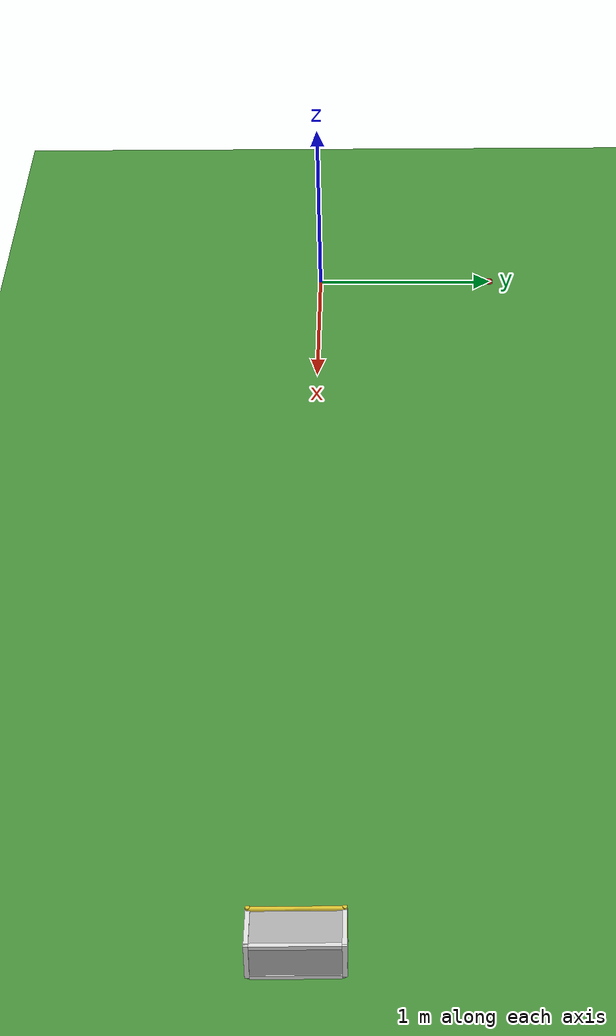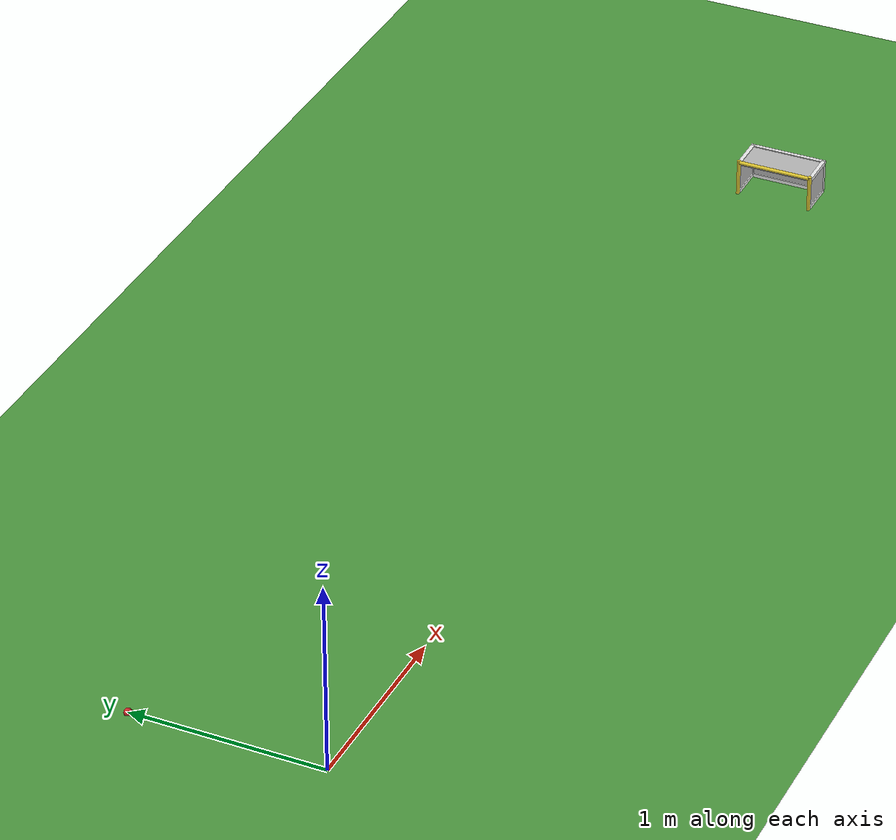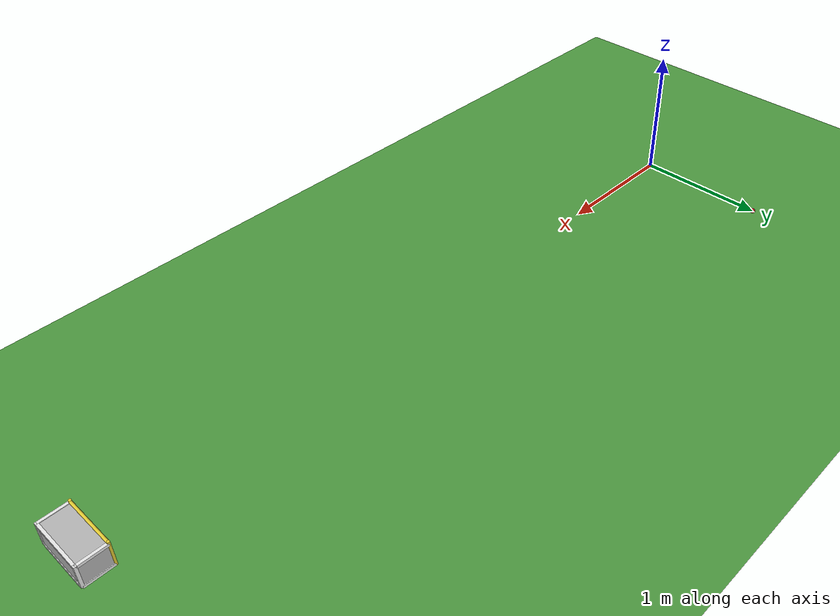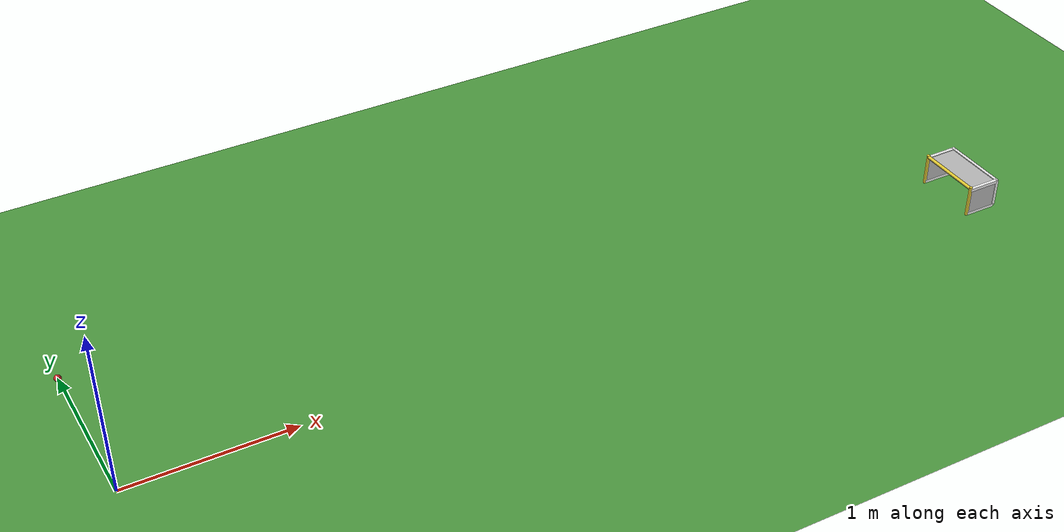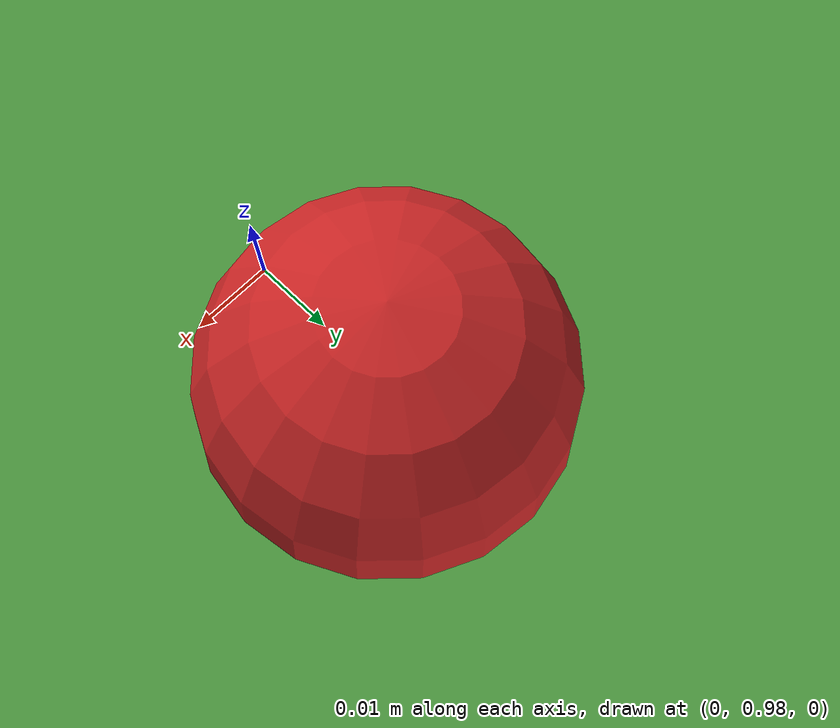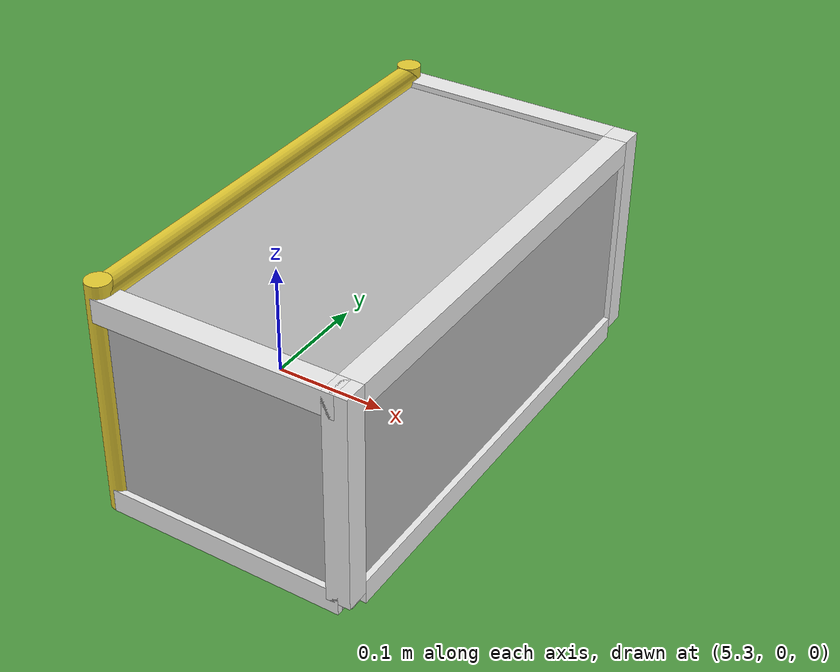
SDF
<sdf version="1.6">
 <world name="vsss_environment">
  <light name="sun" type="directional">
   <cast_shadows>0</cast_shadows>
   <pose>0 0 10 0 -0 0</pose>
   <diffuse>0.8 0.8 0.8 1</diffuse>
   <specular>0.2 0.2 0.2 1</specular>
   <attenuation>
    <range>1000</range>
    <constant>0.9</constant>
    <linear>0.01</linear>
    <quadratic>0.001</quadratic>
   </attenuation>
   <direction>-0.5 0.1 -0.9</direction>
  </light>
  <model name="ground_plane">
   <static>1</static>
   <link name="link">
    <collision name="collision">
     <geometry><plane><normal>0 0 1</normal><size>11 9</size></plane></geometry>
     <surface><friction><ode><mu>0.5</mu><mu2>0.5</mu2></ode></friction></surface>
    </collision>
    <visual name="visual">
     <cast_shadows>0</cast_shadows>
     <geometry><plane><normal>0 0 1</normal><size>11 9</size></plane></geometry>
     <material>
      <script>
       <uri>model://robocup_3Dsim_field/materials/scripts/</uri>
       <uri>model://robocup_3Dsim_field/materials/textures/</uri>
       <name>RoboCup/Grass</name>
      </script>
     </material>
    </visual>
   </link>
  </model>
  <gravity>0 0 -9.8</gravity>
  <magnetic_field>6e-06 2.3e-05 -4.2e-05</magnetic_field>
  <atmosphere type="adiabatic"/>
  <physics name="default_physics" default="0" type="ode">
   <max_step_size>0.001</max_step_size>
   <real_time_factor>1</real_time_factor>
   <real_time_update_rate>1000</real_time_update_rate>
  </physics>
  <scene><ambient>0.4 0.4 0.4 1</ambient><background>0.7 0.7 0.7 1</background><shadows>0</shadows></scene>
  <spherical_coordinates>
   <surface_model>EARTH_WGS84</surface_model>
   <latitude_deg>0</latitude_deg>
   <longitude_deg>0</longitude_deg>
   <elevation>0</elevation>
   <heading_deg>0</heading_deg>
  </spherical_coordinates>
  <model name="robocup_3d_goal">
   <static>1</static>
   <link name="left_post">
    <pose>0 0.2 0.1 0 -0 0</pose>
    <collision name="collision">
     <geometry><cylinder><radius>0.01</radius><length>0.2</length></cylinder></geometry>
    </collision>
    <visual name="visual">
     <geometry><cylinder><radius>0.01</radius><length>0.2</length></cylinder></geometry>
     <material>
      <script><uri>file://media/materials/scripts/gazebo.material</uri><name>Gazebo/ZincYellow</name></script>
     </material>
    </visual>
   </link>
   <link name="left_support_horiz_lower">
    <pose>0.1 0.2 0.01 0 -0 0</pose>
    <collision name="collision"><geometry><box><size>0.2 0.02 0.02</size></box></geometry></collision>
    <visual name="visual">
     <geometry><box><size>0.2 0.02 0.02</size></box></geometry>
     <material>
      <script><uri>file://media/materials/scripts/gazebo.material</uri><name>Gazebo/White</name></script>
     </material>
    </visual>
   </link>
   <link name="left_support_horiz_upper">
    <pose>0.1 0.2 0.18 0 -0 0</pose>
    <collision name="collision"><geometry><box><size>0.2 0.02 0.02</size></box></geometry></collision>
    <visual name="visual">
     <geometry><box><size>0.2 0.02 0.02</size></box></geometry>
     <material>
      <script><uri>file://media/materials/scripts/gazebo.material</uri><name>Gazebo/White</name></script>
     </material>
    </visual>
   </link>
   <link name="left_support_vertical">
    <pose>0.2 0.2 0.1 3.14159 1.57079 3.14159</pose>
    <collision name="collision"><geometry><box><size>0.18 0.02 0.02</size></box></geometry></collision>
    <visual name="visual">
     <geometry><box><size>0.18 0.02 0.02</size></box></geometry>
     <material>
      <script><uri>file://media/materials/scripts/gazebo.material</uri><name>Gazebo/White</name></script>
     </material>
    </visual>
   </link>
   <link name="right_support_horiz_lower">
    <pose>0.1 -0.2 0.01 0 -0 0</pose>
    <collision name="collision"><geometry><box><size>0.2 0.02 0.02</size></box></geometry></collision>
    <visual name="visual">
     <geometry><box><size>0.2 0.02 0.02</size></box></geometry>
     <material>
      <script><uri>file://media/materials/scripts/gazebo.material</uri><name>Gazebo/White</name></script>
     </material>
    </visual>
   </link>
   <link name="right_support_horiz_upper">
    <pose>0.1 -0.2 0.18 0 -0 0</pose>
    <collision name="collision"><geometry><box><size>0.2 0.02 0.02</size></box></geometry></collision>
    <visual name="visual">
     <geometry><box><size>0.2 0.02 0.02</size></box></geometry>
     <material>
      <script><uri>file://media/materials/scripts/gazebo.material</uri><name>Gazebo/White</name></script>
     </material>
    </visual>
   </link>
   <link name="right_support_vertical">
    <pose>0.2 -0.2 0.1 3.14159 1.57079 3.14159</pose>
    <collision name="collision"><geometry><box><size>0.18 0.02 0.02</size></box></geometry></collision>
    <visual name="visual">
     <geometry><box><size>0.18 0.02 0.02</size></box></geometry>
     <material>
      <script><uri>file://media/materials/scripts/gazebo.material</uri><name>Gazebo/White</name></script>
     </material>
    </visual>
   </link>
   <link name="center_support_horiz_lower">
    <pose>0.2 0 0.01 3.14159 1.57079 3.14159</pose>
    <collision name="collision"><geometry><box><size>0.02 0.38 0.02</size></box></geometry></collision>
    <visual name="visual">
     <geometry><box><size>0.02 0.38 0.02</size></box></geometry>
     <material>
      <script><uri>file://media/materials/scripts/gazebo.material</uri><name>Gazebo/White</name></script>
     </material>
    </visual>
   </link>
   <link name="center_support_horiz_upper">
    <pose>0.2 0 0.18 3.14159 1.57079 3.14159</pose>
    <collision name="collision"><geometry><box><size>0.02 0.38 0.02</size></box></geometry></collision>
    <visual name="visual">
     <geometry><box><size>0.02 0.38 0.02</size></box></geometry>
     <material>
      <script><uri>file://media/materials/scripts/gazebo.material</uri><name>Gazebo/White</name></script>
     </material>
    </visual>
   </link>
   <link name="right_post">
    <pose>0 -0.2 0.1 0 -0 0</pose>
    <collision name="collision">
     <geometry><cylinder><radius>0.01</radius><length>0.2</length></cylinder></geometry>
    </collision>
    <visual name="visual">
     <geometry><cylinder><radius>0.01</radius><length>0.2</length></cylinder></geometry>
     <material>
      <script><uri>file://media/materials/scripts/gazebo.material</uri><name>Gazebo/ZincYellow</name></script>
     </material>
    </visual>
   </link>
   <link name="crossbar">
    <pose>0 0 0.19 1.57 1.57 0</pose>
    <collision name="collision">
     <geometry><cylinder><radius>0.01</radius><length>0.4</length></cylinder></geometry>
    </collision>
    <visual name="visual">
     <geometry><cylinder><radius>0.01</radius><length>0.4</length></cylinder></geometry>
     <material>
      <script><uri>file://media/materials/scripts/gazebo.material</uri><name>Gazebo/ZincYellow</name></script>
     </material>
    </visual>
   </link>
   <link name="center_net">
    <pose>0.2 0 0.09 0 -0 0</pose>
    <collision name="collision"><geometry><box><size>0.01 0.4 0.18</size></box></geometry></collision>
    <visual name="visual">
     <geometry><box><size>0.01 0.4 0.18</size></box></geometry>
     <material>
      <script>
       <uri>model://robocup09_spl_field/materials/scripts/</uri>
       <uri>model://robocup09_spl_field/materials/textures/</uri>
       <name>RoboCup/Net</name>
      </script>
     </material>
    </visual>
   </link>
   <link name="left_net">
    <pose>0.1 0.2 0.09 0 -0 0</pose>
    <collision name="collision"><geometry><box><size>0.2 0.01 0.18</size></box></geometry></collision>
    <visual name="visual">
     <geometry><box><size>0.2 0.01 0.188</size></box></geometry>
     <material>
      <script>
       <uri>model://robocup09_spl_field/materials/scripts/</uri>
       <uri>model://robocup09_spl_field/materials/textures/</uri>
       <name>RoboCup/Net</name>
      </script>
     </material>
    </visual>
   </link>
   <link name="right_net">
    <pose>0.1 -0.2 0.09 0 -0 0</pose>
    <collision name="collision"><geometry><box><size>0.2 0.01 0.18</size></box></geometry></collision>
    <visual name="visual">
     <geometry><box><size>0.2 0.01 0.18</size></box></geometry>
     <material>
      <script>
       <uri>model://robocup09_spl_field/materials/scripts/</uri>
       <uri>model://robocup09_spl_field/materials/textures/</uri>
       <name>RoboCup/Net</name>
      </script>
     </material>
    </visual>
   </link>
   <link name="upper_net">
    <pose>0.1 0 0.18 0 -0 0</pose>
    <collision name="collision"><geometry><box><size>0.2 0.4 0.01</size></box></geometry></collision>
    <visual name="visual">
     <geometry><box><size>0.2 0.4 0.01</size></box></geometry>
     <material>
      <script>
       <uri>model://robocup09_spl_field/materials/scripts/</uri>
       <uri>model://robocup09_spl_field/materials/textures/</uri>
       <name>RoboCup/Net</name>
      </script>
     </material>
    </visual>
   </link>
   <pose>5.3 0 0 0 -0 0</pose>
  </model>
  <include><pose>0 1 0 0 0 0</pose><uri>model://vsss_ball</uri><name>ball</name><static>false</static></include>
 </world>
</sdf>

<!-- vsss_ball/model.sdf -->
<sdf version='1.6'>

  <model name='vsss_ball'>
    <link name='ball'>

      <pose frame=''>0 0 0 0 0 0</pose>
      <self_collide>0</self_collide>
      <enable_wind>0</enable_wind>
      <kinematic>0</kinematic>
      <gravity>1</gravity>

      <inertial>
        <mass>0.04593</mass>
        <pose frame=''>0 0 0 0 0 0</pose>
        <inertia>
          <ixx>0.000008363</ixx>
          <iyy>0.000008363</iyy>
          <izz>0.000008363</izz>
          <ixy>0</ixy>
          <ixz>0</ixz>
          <iyz>0</iyz>
        </inertia>
      </inertial>

      <visual name='visual'>
        <pose frame=''>0 0 0 0 0 0</pose>
        <geometry>
          <sphere>
            <radius>0.021335</radius>
          </sphere>
        </geometry>

        <material>
          <script>
            <uri>file://media/materials/scripts/gazebo.material</uri>
            <name>Gazebo/RedBright</name>
          </script>
        </material>
        <transparency>0</transparency>
        <cast_shadows>1</cast_shadows>
      </visual>

      <collision name='collision'>
        <laser_retro>0</laser_retro>
        <max_contacts>10</max_contacts>
        <pose frame=''>0 0 0 0 0 0</pose>

        <geometry>
          <sphere>
            <radius>0.021335</radius>
          </sphere>
        </geometry>
        <surface>

          <friction>
            <ode>
              <mu>0.5</mu>
              <mu2>0.5</mu2>
              <fdir1>0 0 0</fdir1>
              <slip1>0</slip1>
              <slip2>0</slip2>
            </ode>
            <torsional>
              <coefficient>1</coefficient>
              <patch_radius>0.05</patch_radius>
              <surface_radius>0</surface_radius>
              <use_patch_radius>1</use_patch_radius>
              <ode>
                <slip>0</slip>
              </ode>
            </torsional>
          </friction>

          <bounce>
            <restitution_coefficient>0.05</restitution_coefficient>
            <threshold>10</threshold>
          </bounce>

          <contact>
            <collide_without_contact>0</collide_without_contact>
            <collide_without_contact_bitmask>1</collide_without_contact_bitmask>
            <collide_bitmask>1</collide_bitmask>
            <ode>
              <soft_cfm>0</soft_cfm>
              <soft_erp>0.2</soft_erp>
              <kp>1e+13</kp>
              <kd>1</kd>
              <max_vel>0.01</max_vel>
              <min_depth>0</min_depth>
            </ode>
            <bullet>
              <split_impulse>1</split_impulse>
              <split_impulse_penetration_threshold>-0.01</split_impulse_penetration_threshold>
              <soft_cfm>0</soft_cfm>
              <soft_erp>0.2</soft_erp>
              <kp>1e+13</kp>
              <kd>1</kd>
            </bullet>
          </contact>

        </surface>
      </collision>
    </link>
    <static>0</static>
    <allow_auto_disable>1</allow_auto_disable>

  </model>
</sdf>
